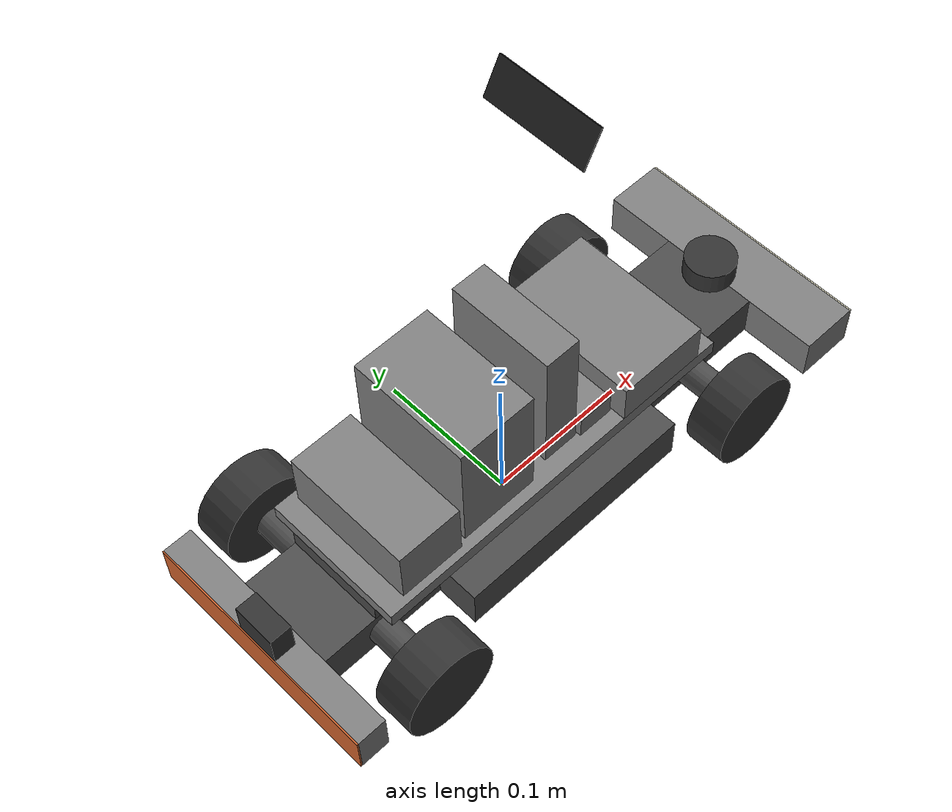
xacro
<?xml version="1.0"?>
<robot name="racer" xmlns:xacro="http://www.ros.org/wiki/xacro">

    <!--external-->
    <xacro:include filename="racer_properties.xacro"/>
    <xacro:include filename="racer_macros.urdf.xacro"/>
    <xacro:include filename="racer_base.urdf.xacro"/>

    <xacro:include filename="racer_gazebo.urdf.xacro"/>

</robot>

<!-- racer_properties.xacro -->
<robot xmlns:xacro="http://www.ros.org/wiki/xacro">

  <!--materials-->
  <material name="green">
    <color rgba="0 0.702 0.678 1" />
  </material>

  <material name="blue-green">
    <color rgba="0 0.4 0.388 1" />
  </material>

  <material name="grey">
    <color rgba="0.8 0.8 0.8 1" />
  </material>

  <material name="dark_grey">
    <color rgba="0.5 0.5 0.5 1" />
  </material>

  <material name="dark">
    <color rgba="0.30 0.30 0.30 1" />
  </material>

  <material name="black">
    <color rgba="0.2 0.2 0.2 1" />
  </material>

  <material name="dark_orange">
    <color rgba="0.4 0.141 0 1" />
  </material>

  <material name="orange">
    <color rgba="0.835 0.4 0.184 1" />
  </material>

  <material name="yellow">
    <color rgba="0.945 0.925 0.824 1" />
  </material>

  <!--properties lower car-->
  <xacro:property name="wheelbase" value="0.26" />

  <xacro:property name="wheel_radius" value="${0.065/2}" />
  <xacro:property name="wheel_width" value="0.028" />
  <xacro:property name="wheel_weight" value="0.015" />

  <xacro:property name="axis_radius" value="0.01" />
  <xacro:property name="axis_length" value="0.13" />
  <xacro:property name="axis_weight" value="0.02" />

  <xacro:property name="base_mid_length" value="0.17" />
  <xacro:property name="base_mid_width" value="0.13" />
  <xacro:property name="base_mid_height" value="0.03" />
  <xacro:property name="base_mid_weight" value="0.5" />

  <xacro:property name="base_front_length" value="0.103" />
  <xacro:property name="base_front_width" value="0.07" />
  <xacro:property name="base_front_height" value="0.03" />
  <xacro:property name="base_front_weight" value="0.2" />
  <xacro:property name="base_back_length" value="0.087" />
  <xacro:property name="base_back_width" value="0.07" />
  <xacro:property name="base_back_height" value="0.03" />
  <xacro:property name="base_back_weight" value="0.2" />

  <xacro:property name="bumper_front_length" value="0.04" />
  <xacro:property name="bumper_front_width" value="0.17" />
  <xacro:property name="bumper_front_height" value="0.03" />
  <xacro:property name="bumper_front_weight" value="0.075" />

  <xacro:property name="bumper_back_length" value="0.02" />
  <xacro:property name="bumper_back_width" value="0.17" />
  <xacro:property name="bumper_back_height" value="0.03" />
  <xacro:property name="bumper_back_weight" value="0.09" />

  <xacro:property name="bumper_light_length" value="0.001" />
  <xacro:property name="bumper_light_weight" value="0.005" />

  <!--properties upper car-->

  <xacro:property name="battery_length" value="0.14" />
  <xacro:property name="battery_width" value="0.04" />
  <xacro:property name="battery_height" value="0.02" />
  <xacro:property name="battery_weight" value="0.25" />

  <xacro:property name="base_spacer_length" value="0.04" />
  <xacro:property name="base_spacer_width" value="0.07" />
  <xacro:property name="base_spacer_height" value="0.0125" />
  <xacro:property name="base_spacer_weight" value="0.025" />

  <xacro:property name="carrier_plate_length" value="0.268" />
  <xacro:property name="carrier_plate_width" value="0.1" />
  <xacro:property name="carrier_plate_height" value="0.01" />
  <xacro:property name="carrier_plate_weight" value="0.1" />

  <xacro:property name="raspberry_pi_length" value="0.065" />
  <xacro:property name="raspberry_pi_width" value="0.1" />
  <xacro:property name="raspberry_pi_height" value="0.028" />
  <xacro:property name="raspberry_pi_weight" value="0.150" />

  <xacro:property name="esc_stack_length" value="0.055" />
  <xacro:property name="esc_stack_width" value="0.085" />
  <xacro:property name="esc_stack_height" value="0.085" />
  <xacro:property name="esc_stack_weight" value="0.150" />

  <xacro:property name="camera_stack_length" value="0.025" />
  <xacro:property name="camera_stack_width" value="0.075" />
  <xacro:property name="camera_stack_height" value="0.095" />
  <xacro:property name="camera_stack_weight" value="0.095" />

  <xacro:property name="camera_length" value="0.001" />
  <xacro:property name="camera_width" value="0.07" />
  <xacro:property name="camera_height" value="0.025" />
  <xacro:property name="camera_weight" value="0.005" />
  <xacro:property name="camera_hz" value="30" />
  <xacro:property name="camera_fov" value="1.089" />
  <xacro:property name="camera_resolution_width" value="640" />
  <xacro:property name="camera_resolution_height" value="480" />
  <xacro:property name="camera_high_ground_height" value="0.30" />

  <xacro:property name="electronics_box_front_length" value="0.025" />
  <xacro:property name="electronics_box_front_width" value="0.06" />
  <xacro:property name="electronics_box_front_height" value="0.015" />
  <xacro:property name="electronics_box_front_weight" value="0.025" />

  <xacro:property name="electronics_box_back_length" value="0.045" />
  <xacro:property name="electronics_box_back_width" value="0.09" />
  <xacro:property name="electronics_box_back_height" value="0.04" />
  <xacro:property name="electronics_box_back_weight" value="0.025" />

  <xacro:property name="lidar_front_radius" value="${0.035/2}" />
  <xacro:property name="lidar_front_height" value="0.015" />
  <xacro:property name="lidar_front_weight" value="0.01" />

  <xacro:property name="lidar_back_length" value="0.015" />
  <xacro:property name="lidar_back_width" value="0.03" />
  <xacro:property name="lidar_back_height" value="0.025" />
  <xacro:property name="lidar_back_weight" value="0.005" />

  <xacro:property name="lidar_update_rate" value="10" />
  <xacro:property name="lidar_samples" value="360" />
  <xacro:property name="lidar_range_min" value="0.02" />
  <xacro:property name="lidar_range_max" value="12.0" />
</robot>

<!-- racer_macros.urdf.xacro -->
<robot xmlns:xacro="http://www.ros.org/wiki/xacro">
    <!--macros-->

    <xacro:macro name="cylinder" params="name radius height weight=0 color=blue-green">
        <link name="${name}_link">
            <visual>
                <geometry>
                    <cylinder radius="${radius}" length="${height}" />
                </geometry>
                <origin xyz="0 0 0" rpy="0 0 0" />
                <material name="${color}" />
            </visual>
            <collision>
                <geometry>
                    <sphere radius="${radius}" />
                </geometry>
                <origin xyz="0 0 0" rpy="0 0 0" />
            </collision>
            <xacro:cylinder_inertia m="${weight}" r="${radius}" h="${height}" o_xyz="0 0 0"
                o_rpy="0 0 0" />
        </link>
    </xacro:macro>

    <xacro:macro name="wheel" params="prefix">
        <link name="${prefix}_wheel_link">
            <visual>
                <geometry>
                    <cylinder radius="${wheel_radius}" length="${wheel_width}" />
                </geometry>
                <origin xyz="0 0 0" rpy="${pi / 2.0} 0 0" />
                <material name="black" />
            </visual>
            <collision>
                <geometry>
                    <sphere radius="${wheel_radius}" />
                </geometry>
                <origin xyz="0 0 0" rpy="0 0 0" />
            </collision>
            <xacro:cylinder_inertia m="${wheel_weight}" r="${wheel_radius}" h="${wheel_width}" o_xyz="0 0 0"
                o_rpy="${pi / 2.0} 0 0" />
        </link>
        <gazebo reference="${prefix}_wheel_link">
            <mu1>1.5</mu1> <mu2>1.5</mu2> <kp>1000000.0</kp> <kd>10.0</kd>      <minDepth>0.001</minDepth>
            <maxVel>0.1</maxVel>
            <fdir1>1 0 0</fdir1> <material>Gazebo/Black</material>
        </gazebo>
    </xacro:macro>

    <xacro:macro name="axis" params="prefix">
        <link name="${prefix}_axis_link">
            <visual>
                <geometry>
                    <cylinder radius="${axis_radius}" length="${axis_length}" />
                </geometry>
                <origin xyz="0 0 0" rpy="${pi / 2.0} 0 0" />
                <material name="dark" />
            </visual>
            <collision>
                <geometry>
                    <sphere radius="${axis_radius}" />
                </geometry>
                <origin xyz="0 0 0" rpy="0 0 0" />
            </collision>
            <xacro:cylinder_inertia m="${axis_weight}" r="${axis_radius}" h="${axis_length}" o_xyz="0 0 0"
                o_rpy="${pi / 2.0} 0 0" />
        </link>
    </xacro:macro>

    <xacro:macro name="box" params="name length width height weight=0 color=blue-green">
        <link name="${name}_link">
            <visual>
                <geometry>
                    <box
                        size="${length} ${width} ${height}" />
                </geometry>
                <origin xyz="0 0 ${height / 2.0}" rpy="0 0 0" />
                <material name="${color}" />
            </visual>
            <collision>
                <geometry>
                    <box
                        size="${length} ${width} ${height}" />
                </geometry>
                <origin xyz="0 0 ${height / 2.0}" rpy="0 0 0" />
            </collision>
            <xacro:box_inertia m="${weight}" x="${length}" y="${width}"
                z="${height}" o_xyz="0 0 ${height / 2.0}"
                o_rpy="0 0 0" />
        </link>
    </xacro:macro>

    <xacro:macro name="front_steering_mount" params="position">
        <link name="front_${position}_steering_link">
            <inertial>
                <mass value="0.001" />
                <origin xyz="0 0 0" rpy="0 0 0" />
                <inertia ixx="0.000001" ixy="0.0" ixz="0.0" iyy="0.000001" iyz="0.0" izz="0.000001" />
            </inertial>
        </link>
    </xacro:macro>

    <xacro:macro name="box_inertia" params="m x y z o_xyz o_rpy">
    <inertial>
    <!--https://en.wikipedia.org/wiki/List_of_moments_of_inertia-->
      <mass value="${m}"/>
      <origin xyz="${o_xyz}" rpy="${o_rpy}"/>
      <inertia ixx="${(m/12) * (y*y + z*z)}" ixy="0" ixz="0"
               iyy="${(m/12) * (x*x + z*z)}" iyz="0"
               izz="${(m/12) * (x*x + y*y)}"/>
    </inertial>
  </xacro:macro>

  <xacro:macro name="cylinder_inertia" params="m r h o_xyz o_rpy">
    <inertial>
    <!--https://en.wikipedia.org/wiki/List_of_moments_of_inertia-->
      <mass value="${m}"/>
      <origin xyz="${o_xyz}" rpy="${o_rpy}"/>
      <inertia ixx="${(m/12) * (3*r*r + h*h)}" ixy="0" ixz="0"
               iyy="${(m/12) * (3*r*r + h*h)}" iyz="0"
               izz="${(m/2) * (r*r)}"/>
    </inertial>
  </xacro:macro>

  <xacro:macro name="sphere_inertia" params="m r o_xyz o_rpy">
    <inertial>
    <!--https://en.wikipedia.org/wiki/List_of_moments_of_inertia-->
      <mass value="${m}"/>
      <origin xyz="${o_xyz}" rpy="${o_rpy}"/>
      <inertia ixx="${(2/5)*m*r*r}" ixy="0" ixz="0"
               iyy="${(2/5)*m*r*r}" iyz="0"
               izz="${(2/5)*m*r*r}"/>
    </inertial>
  </xacro:macro>

    <xacro:macro name="gazebo_camera" params="link_name topic_name sensor_name:=camera">
        <gazebo reference="${link_name}">
            <sensor name="${sensor_name}" type="camera">
                <update_rate>${camera_hz}</update_rate> <topic>${topic_name}</topic>
                <gz_frame_id>${link_name}</gz_frame_id> <camera>
                    <horizontal_fov>${camera_fov}</horizontal_fov> <image>
                        <width>${camera_resolution_width}</width> <height>${camera_resolution_height}</height> <format>R8G8B8</format>
                    </image>
                    <clip>
                        <near>0.05</near>
                        <far>8.0</far>
                    </clip>
                </camera>
            </sensor>
        </gazebo>
    </xacro:macro>

  <xacro:macro name="imu_sensor_virtual" params="name parent_link xyz rpy topic:=/model/racer/imu">
    <joint name="${name}_joint" type="fixed">
      <parent link="${parent_link}" />
      <child link="${name}_link" />
      <origin xyz="${xyz}" rpy="${rpy}" />
    </joint>

    <link name="${name}_link">
      </link>

    <gazebo reference="${name}_link">
      <sensor name="${name}" type="imu">
        <always_on>1</always_on>
        <update_rate>100</update_rate>
        <visualize>true</visualize>
        <topic>${topic}</topic>
        <plugin filename="gz-sim-imu-system" name="gz::sim::systems::Imu">
        </plugin>
      </sensor>
    </gazebo>
  </xacro:macro>

  <xacro:macro name="gazebo_lidar" params="link_name topic_name update_rate samples min_angle max_angle range_min range_max">
    <gazebo reference="${link_name}">
        <sensor name="${link_name}_sensor" type="gpu_lidar">
            <topic>${topic_name}</topic>
            <always_on>true</always_on>
            <update_rate>${update_rate}</update_rate>
            <visualize>true</visualize>
            <lidar>
                <scan>
                    <horizontal>
                        <samples>${samples}</samples>
                        <resolution>1</resolution>
                        <min_angle>${min_angle}</min_angle>
                        <max_angle>${max_angle}</max_angle>
                    </horizontal>
                </scan>
                <range>
                    <min>${range_min}</min>
                    <max>${range_max}</max>
                    <resolution>0.01</resolution>
                </range>
            </lidar>
        </sensor>
    </gazebo>
</xacro:macro>

</robot>

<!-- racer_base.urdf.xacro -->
<robot xmlns:xacro="http://www.ros.org/wiki/xacro">

    <!--links-->
    <link name="base_footprint" />
    <link name="ipm_ground_virtuallink" />

    <xacro:box name="base_mid" length="${base_mid_length}" width="${base_mid_width}" height="${base_mid_height}" weight="${base_mid_weight}" color="dark" />
    <xacro:box name="base_front" length="${base_front_length}" width="${base_front_width}" height="${base_front_height}" weight="${base_front_weight}" color="dark" />
    <xacro:box name="base_back" length="${base_back_length}" width="${base_back_width}" height="${base_back_height}" weight="${base_back_weight}" color="dark" />

    <xacro:box name="bumper_front" length="${bumper_front_length}" width="${bumper_front_width}" height="${bumper_front_height}" weight="${bumper_front_weight}" color="dark_grey" />
    <xacro:box name="bumper_front_light" length="${bumper_light_length}" width="${bumper_front_width}" height="${bumper_front_height}" weight="${bumper_light_weight}" color="yellow" />
    <xacro:box name="bumper_back" length="${bumper_back_length}" width="${bumper_back_width}" height="${bumper_back_height}" weight="${bumper_back_weight}" color="dark_grey" />
    <xacro:box name="bumper_back_light" length="${bumper_light_length}" width="${bumper_back_width}" height="${bumper_back_height}" weight="${bumper_light_weight}" color="orange" />

    <xacro:axis prefix="front" />
    <xacro:axis prefix="back" />

    <xacro:wheel prefix="back_right" />
    <xacro:wheel prefix="back_left" />
    <xacro:wheel prefix="front_right" />
    <xacro:wheel prefix="front_left" />

    <xacro:front_steering_mount position="right" />
    <xacro:front_steering_mount position="left" />

    <xacro:box name="battery" length="${battery_length}" width="${battery_width}" height="${battery_height}" weight="${battery_weight}" color="grey" />

    <xacro:box name="base_front_spacer" length="${base_spacer_length}" width="${base_spacer_width}" height="${base_spacer_height}" weight="${base_spacer_weight}" color="dark" />
    <xacro:box name="base_back_spacer" length="${base_spacer_length}" width="${base_spacer_width}" height="${base_spacer_height}" weight="${base_spacer_weight}" color="dark" />
    <xacro:box name="carrier_plate" length="${carrier_plate_length}" width="${carrier_plate_width}" height="${carrier_plate_height}" weight="${carrier_plate_weight}" color="dark_grey" />

    <xacro:box name="raspberry_pi" length="${raspberry_pi_length}" width="${raspberry_pi_width}" height="${raspberry_pi_height}" weight="${raspberry_pi_weight}" color="dark_grey" />
    <xacro:box name="esc_stack" length="${esc_stack_length}" width="${esc_stack_width}" height="${esc_stack_height}" weight="${esc_stack_weight}" color="dark_grey" />
    <xacro:box name="camera_stack" length="${camera_stack_length}" width="${camera_stack_width}" height="${camera_stack_height}" weight="${camera_stack_weight}" color="dark_grey" />
    <xacro:box name="camera_high" length="${camera_length}" width="${camera_width}" height="${camera_height}" weight="${camera_weight}" color="black" />
    <xacro:box name="electronics_box_front" length="${electronics_box_front_length}" width="${electronics_box_front_width}" height="${electronics_box_front_height}" weight="${electronics_box_front_weight}" color="dark_grey" />
    <xacro:box name="electronics_box_back" length="${electronics_box_back_length}" width="${electronics_box_back_width}" height="${electronics_box_back_height}" weight="${electronics_box_back_weight}" color="dark_grey" />

    <xacro:cylinder name="lidar_front" radius="${lidar_front_radius}" height="${lidar_front_height}" weight="${lidar_front_weight}" color="black" />
    <xacro:box name="lidar_back" length="${lidar_back_length}" width="${lidar_back_width}" height="${lidar_back_height}" weight="${lidar_back_weight}" color="black" />

    <xacro:imu_sensor_virtual name="imu" parent_link="base_mid_link" xyz="0 0 0" rpy="0 0 0" />

    <!--joints-->
    <joint name="base_joint" type="fixed">
        <parent link="base_footprint" />
        <child link="base_mid_link" />
        <origin xyz="0 0 ${wheel_radius - (base_mid_height / 2.0)}" rpy="0 0 0" />
    </joint>

    <joint name="base_footprint_to_ipm_ground_joint" type="fixed">
        <parent link="base_footprint" />
        <child link="ipm_ground_virtuallink" />
        <origin xyz="0.30 0 0" rpy="0 0 0" />
    </joint>

    <joint name="base_mid_to_base_front_joint" type="fixed">
        <parent link="base_mid_link" />
        <child link="base_front_link" />
        <origin xyz="${(base_mid_length / 2.0) + (base_front_length / 2.0)} 0 0" rpy="0 0 0" />
    </joint>

    <joint name="base_mid_to_base_back_joint" type="fixed">
        <parent link="base_mid_link" />
        <child link="base_back_link" />
        <origin xyz="${-(base_mid_length / 2.0) - (base_back_length / 2.0)} 0 0" rpy="0 0 0" />
    </joint>

    <joint name="base_front_to_bumper_front_joint" type="fixed">
        <parent link="base_front_link" />
        <child link="bumper_front_link" />
        <origin xyz="${(base_front_length / 2.0) + (bumper_front_length / 2.0)} 0 0" rpy="0 0 0" />
    </joint>

    <joint name="base_back_to_bumper_back_joint" type="fixed">
        <parent link="base_back_link" />
        <child link="bumper_back_link" />
        <origin xyz="${-(base_back_length / 2.0) - (bumper_back_length / 2.0)} 0 0" rpy="0 0 0" />
    </joint>

    <joint name="bumper_front_to_bumper_front_light_joint" type="fixed">
        <parent link="bumper_front_link" />
        <child link="bumper_front_light_link" />
        <origin xyz="${(bumper_front_length / 2.0) + (bumper_light_length / 2.0)} 0 0" rpy="0 0 0" />
    </joint>

    <joint name="bumper_back_to_bumper_back_light_joint" type="fixed">
        <parent link="bumper_back_link" />
        <child link="bumper_back_light_link" />
        <origin xyz="${-(bumper_back_length / 2.0) - (bumper_light_length / 2.0)} 0 0" rpy="0 0 0" />
    </joint>

    <joint name="base_mid_to_front_axis_joint" type="fixed">
        <parent link="base_mid_link" />
        <child link="front_axis_link" />
        <origin xyz="${wheelbase / 2.0} 0 ${base_mid_height / 2.0}" rpy="0 0 0" />
    </joint>

    <joint name="base_mid_to_back_axis_joint" type="fixed">
        <parent link="base_mid_link" />
        <child link="back_axis_link" />
        <origin xyz="${-(wheelbase / 2.0)} 0 ${base_mid_height / 2.0}" rpy="0 0 0" />
    </joint>

    <joint name="back_right_wheel_joint" type="continuous">
        <parent link="back_axis_link" />
        <child link="back_right_wheel_link" />
        <origin xyz="0 ${-(axis_length / 2.0 + wheel_width / 2.0)} 0" rpy="0 0 0" />
        <axis xyz="0 1 0" />
        <dynamics damping="0.1" friction="0.1"/>
    </joint>

    <joint name="back_left_wheel_joint" type="continuous">
        <parent link="back_axis_link" />
        <child link="back_left_wheel_link" />
        <origin xyz="0 ${(axis_length / 2.0 + wheel_width / 2.0)} 0" rpy="0 0 0" />
        <axis xyz="0 1 0" />
        <dynamics damping="0.1" friction="0.1"/>
    </joint>

    <joint name="front_right_steering_joint" type="revolute">
        <parent link="front_axis_link" />
        <child link="front_right_steering_link" />
        <origin xyz="0 ${-(axis_length / 2.0 + wheel_width / 2.0)} 0" rpy="0 0 0" />
        <axis xyz="0 0 1" />
        <limit lower="-0.5" upper="0.5" effort="10.0" velocity="5.0" /> <dynamics damping="0.7" friction="0.1"/>
    </joint>

    <joint name="front_right_wheel_joint" type="continuous">
        <parent link="front_right_steering_link" />
        <child link="front_right_wheel_link" />
        <origin xyz="0 0 0" rpy="0 0 0" />
        <axis xyz="0 1 0" />
    </joint>

    <joint name="front_left_steering_joint" type="revolute">
        <parent link="front_axis_link" />
        <child link="front_left_steering_link" />
        <origin xyz="0 ${(axis_length / 2.0 + wheel_width / 2.0)} 0" rpy="0 0 0" />
        <axis xyz="0 0 1" />
        <limit lower="-0.5" upper="0.5" effort="10.0" velocity="5.0" /> <dynamics damping="0.7" friction="0.1"/>
    </joint>

    <joint name="front_left_wheel_joint" type="continuous">
        <parent link="front_left_steering_link" />
        <child link="front_left_wheel_link" />
        <origin xyz="0 0 0" rpy="0 0 0" />
        <axis xyz="0 1 0" />
    </joint>

    <joint name="base_mid_to_battery_joint" type="fixed">
        <parent link="base_mid_link" />
        <child link="battery_link" />
        <origin xyz="0 0 ${(base_mid_height / 2.0) + (battery_height / 2.0)}" rpy="0 0 0" />
    </joint>

    <joint name="base_mid_to_spacer_front_joint" type="fixed">
        <parent link="base_mid_link" />
        <child link="base_front_spacer_link" />
        <origin xyz="${carrier_plate_length / 2.0 - (base_spacer_length / 2.0)} 0 ${base_mid_height}" rpy="0 0 0" />
    </joint>

    <joint name="base_mid__to_spacer_back_joint" type="fixed">
        <parent link="base_mid_link" />
        <child link="base_back_spacer_link" />
        <origin xyz="${-(carrier_plate_length / 2.0 - (base_spacer_length / 2.0))} 0 ${base_mid_height}" rpy="0 0 0" />
    </joint>

    <joint name="base_mid_to_carrier_plate_joint" type="fixed">
        <parent link="base_mid_link" />
        <child link="carrier_plate_link" />
        <origin xyz="0 0 ${base_mid_height + base_spacer_height}" rpy="0 0 0" />
    </joint>

    <joint name="carrier_plate_to_raspberry_pi_joint" type="fixed">
        <parent link="carrier_plate_link" />
        <child link="raspberry_pi_link" />
        <origin xyz="${(carrier_plate_length / 2.0) - (raspberry_pi_length / 2.0) - 0.015} 0 ${(carrier_plate_height)}" rpy="0 0 0" />
    </joint>

    <joint name="carrier_plate_to_camera_stack_joint" type="fixed">
        <parent link="carrier_plate_link" />
        <child link="camera_stack_link" />
        <origin xyz="${camera_stack_length / 2.0} 0 ${(carrier_plate_height)}" rpy="0 0 0" />
    </joint>

    <joint name="camera_stack_to_camera_high_joint" type="fixed">
        <parent link="camera_stack_link" />
        <child link="camera_high_link" />
        <origin
            xyz="${(camera_stack_length / 2.0) + (camera_length / 2.0)} 0 ${camera_high_ground_height - ((wheel_radius - (base_mid_height / 2.0)) + (base_mid_height + base_spacer_height + carrier_plate_height))}"
            rpy="0 0.50 0" />
    </joint>

    <joint name="carrier_plate_to_esc_stack_joint" type="fixed">
        <parent link="carrier_plate_link" />
        <child link="esc_stack_link" />
        <origin xyz="${-((esc_stack_length / 2.0) + 0.015)} 0 ${(carrier_plate_height)}" rpy="0 0 0" />
    </joint>

    <joint name="carrier_plate_to_electronics_box_front_joint" type="fixed">
        <parent link="carrier_plate_link" />
        <child link="electronics_box_front_link" />
        <origin xyz="${(camera_stack_length + electronics_box_front_length / 2.0 + 0.002)} -0.01 ${(carrier_plate_height)}" rpy="0 0 0" />
    </joint>

    <joint name="carrier_plate_to_electronics_box_back_joint" type="fixed">
        <parent link="carrier_plate_link" />
        <child link="electronics_box_back_link" />
        <origin xyz="${-((esc_stack_length + 0.015) + electronics_box_back_length / 2.0 + 0.005)} 0 ${(carrier_plate_height)}" rpy="0 0 0" />
    </joint>

    <joint name="bumper_front_to_lidar_front_joint" type="fixed">
        <parent link="bumper_front_link" />
        <child link="lidar_front_link" />
        <origin xyz="${bumper_front_length / 2.0 - 0.04} 0 ${(bumper_front_height) + (lidar_front_height / 2.0)}" rpy="0 0 0" />
    </joint>

    <joint name="bumper_back_to_lidar_back_joint" type="fixed">
        <parent link="bumper_back_link" />
        <child link="lidar_back_link" />
        <origin xyz="${-(bumper_back_length / 2.0 - lidar_back_length / 2.0)} 0 ${(bumper_back_height / 2.0) + (lidar_back_height / 2.0)}" rpy="0 0 0" />
    </joint>
</robot>
